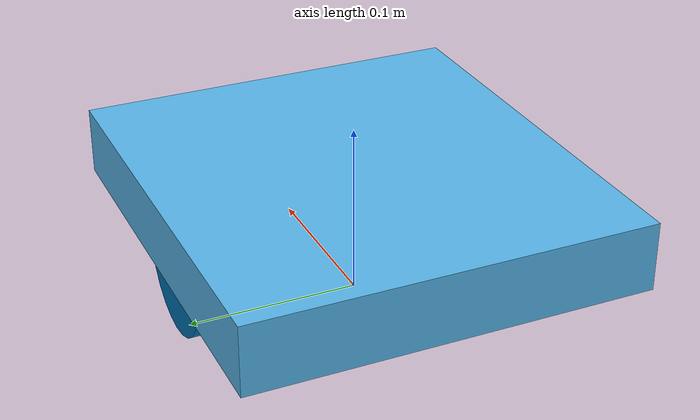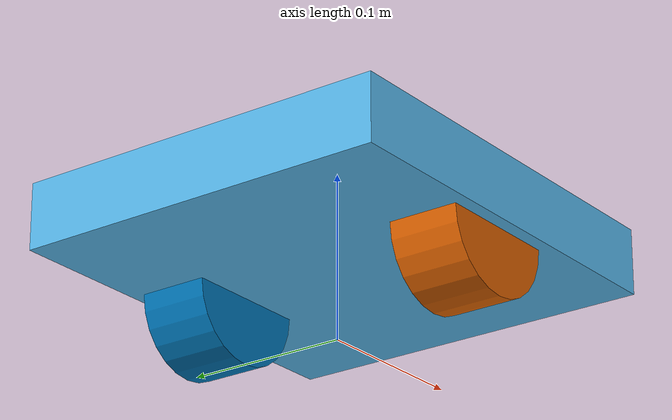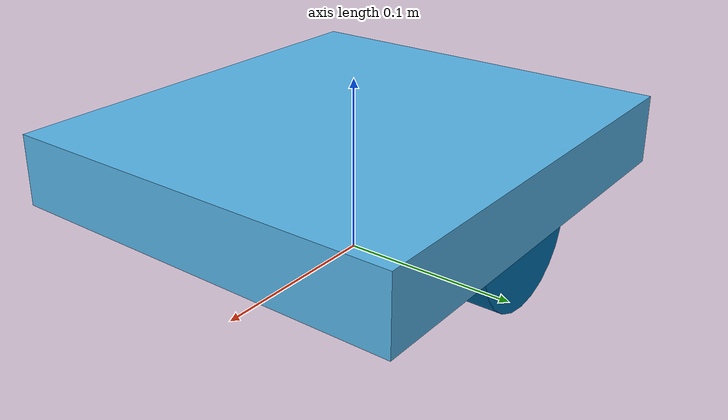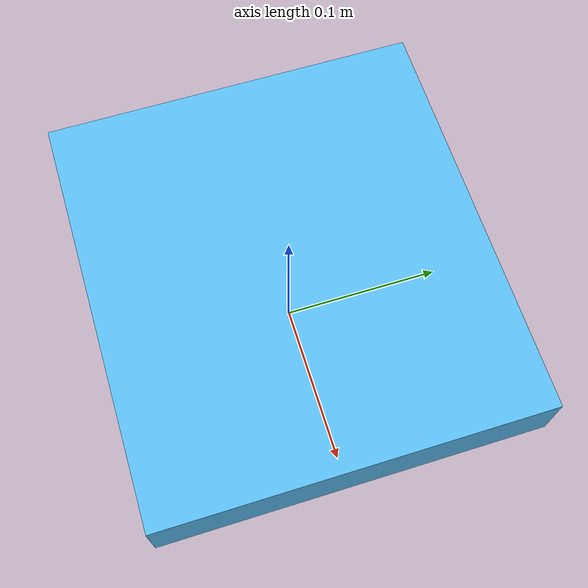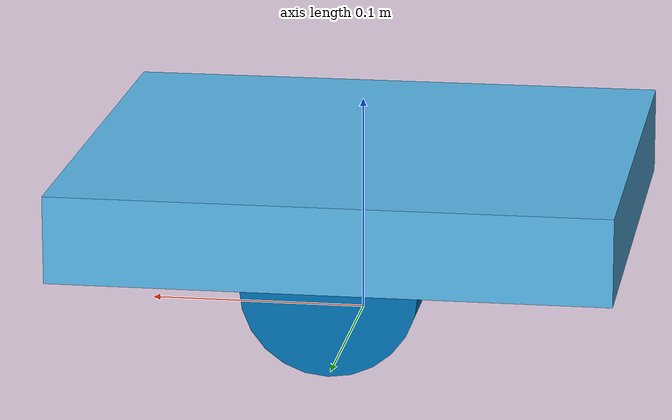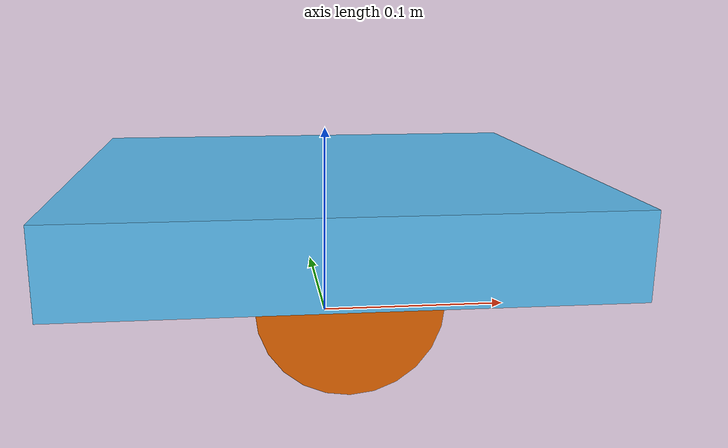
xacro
<?xml version="1.0"?>
<robot name="picar" xmlns:xacro="http://www.ros.org/wiki/xacro">

  <!-- ===================== every dimension ===================== -->
  <xacro:property name="wheel_radius"      value="0.040"/>  <!-- [BOM] 80 mm tyres, firmware mainType 2 WHEEL_D; = sim/mock_robot.py WHEEL_RADIUS_M -->
  <xacro:property name="wheel_separation"  value="0.172"/>  <!-- [BOM] firmware mainType 2 TRACK_WIDTH; = sim/mock_robot.py TRACK_WIDTH_M -->
  <xacro:property name="wheel_width"       value="0.0425"/> <!-- [BOM] 42.5 mm tyres -->
  <xacro:property name="body_length"       value="0.253"/>  <!-- [BOM] outer, 253 x 231 mm: the FOOTPRINT nav2 and robot/safety.py use -->
  <xacro:property name="body_width"        value="0.231"/>  <!-- [BOM] outer; the shell, not the wheels, sets the width -->
  <xacro:property name="deck_height"       value="0.040"/>  <!-- [PLACEHOLDER] chassis plate ~40 mm (CLAUDE.md Stage 0) -->
  <xacro:property name="axle_x"            value="0.0"/>    <!-- [CAD] driven wheels symmetric at +/-0.0855 m about the centre -->
  <xacro:property name="laser_x"           value="0.040"/>
  <xacro:property name="laser_z"           value="0.080"/>  <!-- [CAD] lidar 0.120 m off the floor -->
  <xacro:property name="pan_x"             value="-0.009"/> <!-- [CAD] pan axis just BEHIND base_link -->
  <xacro:property name="pan_z"             value="0.128"/>  <!-- [CAD] pan joint 0.168 m off the floor -->
  <xacro:property name="camera_x"          value="0.048"/>  <!-- [CAD] lens ahead of the pan axis -->
  <xacro:property name="camera_up"         value="0.042"/>  <!-- [CAD] lens above the pan joint: 0.210 m off the floor -->
  <xacro:property name="camera_pitch"      value="0.2618"/> <!-- [PLACEHOLDER] 15 deg down; the wedge is 10-20 deg, unmodelled -->
  <xacro:property name="pan_limit"         value="1.5708"/> <!-- [PLACEHOLDER] +/-90 deg; ST3215 can do more, the cable cannot -->

  <xacro:arg name="robot_url" default="http://host.docker.internal:8000"/>
  <xacro:arg name="use_ros2_control" default="true"/>

  <link name="base_footprint"/>
  <link name="base_link">
    <visual>
      <origin xyz="${-axle_x} 0 ${deck_height/2}"/>
      <geometry><box size="${body_length} ${body_width} ${deck_height}"/></geometry>
    </visual>
    <collision>
      <origin xyz="${-axle_x} 0 ${deck_height/2}"/>
      <geometry><box size="${body_length} ${body_width} ${deck_height}"/></geometry>
    </collision>
  </link>
  <joint name="base_footprint_joint" type="fixed">
    <parent link="base_footprint"/><child link="base_link"/>
    <origin xyz="0 0 ${wheel_radius}"/>
  </joint>

  <!-- The bumpers, as frames: the sensor-to-bumper offset robot/safety.py
       carries as a constant is this transform. -->
  <link name="front_bumper"/>
  <joint name="front_bumper_joint" type="fixed">
    <parent link="base_link"/><child link="front_bumper"/>
    <origin xyz="${body_length/2 - axle_x} 0 0"/>
  </joint>
  <link name="rear_bumper"/>
  <joint name="rear_bumper_joint" type="fixed">
    <parent link="base_link"/><child link="rear_bumper"/>
    <origin xyz="${-body_length/2 - axle_x} 0 0"/>
  </joint>

  <xacro:macro name="wheel" params="side y">
    <link name="${side}_wheel">
      <visual>
        <origin rpy="${pi/2} 0 0"/>
        <geometry><cylinder radius="${wheel_radius}" length="${wheel_width}"/></geometry>
      </visual>
    </link>
    <joint name="${side}_wheel_joint" type="continuous">
      <parent link="base_link"/><child link="${side}_wheel"/>
      <origin xyz="0 ${y} 0"/>
      <axis xyz="0 1 0"/>
    </joint>
  </xacro:macro>
  <xacro:wheel side="left"  y="${wheel_separation/2}"/>
  <xacro:wheel side="right" y="${-wheel_separation/2}"/>

  <link name="laser"/>
  <joint name="laser_joint" type="fixed">
    <parent link="base_link"/><child link="laser"/>
    <origin xyz="${laser_x - axle_x} 0 ${laser_z}"/>
  </joint>

  <!-- The camera pans; bearings compose through this joint. -->
  <link name="pan_link"/>
  <joint name="pan_joint" type="revolute">
    <parent link="base_link"/><child link="pan_link"/>
    <origin xyz="${pan_x} 0 ${pan_z}"/>
    <axis xyz="0 0 1"/>
    <limit lower="${-pan_limit}" upper="${pan_limit}" effort="2.9" velocity="4.0"/>
  </joint>
  <link name="camera_link"/>
  <joint name="camera_joint" type="fixed">
    <parent link="pan_link"/><child link="camera_link"/>
    <origin xyz="${camera_x} 0 ${camera_up}" rpy="0 ${camera_pitch} 0"/>
  </joint>
  <!-- REP-103's optical convention (z forward, x right, y down), for an
       image pipeline that wants it. -->
  <link name="camera_optical_frame"/>
  <joint name="camera_optical_joint" type="fixed">
    <parent link="camera_link"/><child link="camera_optical_frame"/>
    <origin rpy="${-pi/2} 0 ${-pi/2}"/>
  </joint>

  <xacro:if value="$(arg use_ros2_control)">
    <ros2_control name="picar" type="system">
      <hardware>
        <plugin>picar_sim_hardware/PicarSimHardware</plugin>
        <param name="robot_url">$(arg robot_url)</param>
      </hardware>
      <joint name="left_wheel_joint">
        <command_interface name="velocity"/>
        <state_interface name="position"/>
        <state_interface name="velocity"/>
      </joint>
      <joint name="right_wheel_joint">
        <command_interface name="velocity"/>
        <state_interface name="position"/>
        <state_interface name="velocity"/>
      </joint>
    </ros2_control>
  </xacro:if>
</robot>
